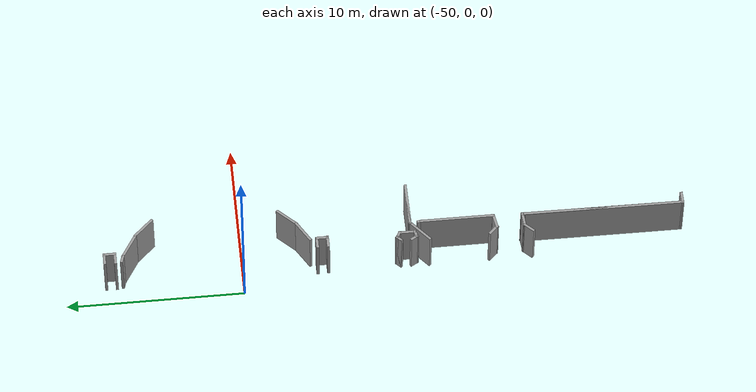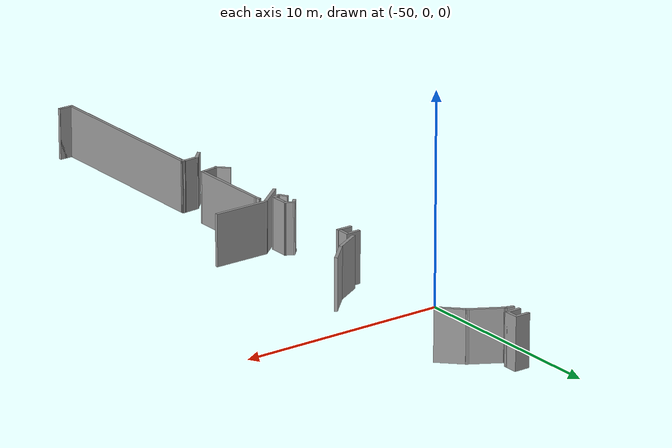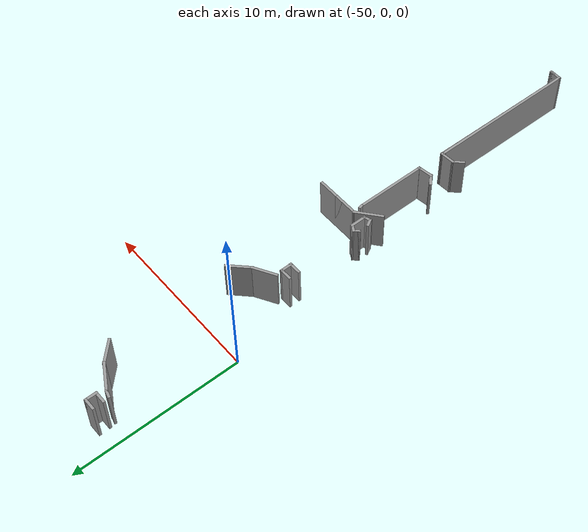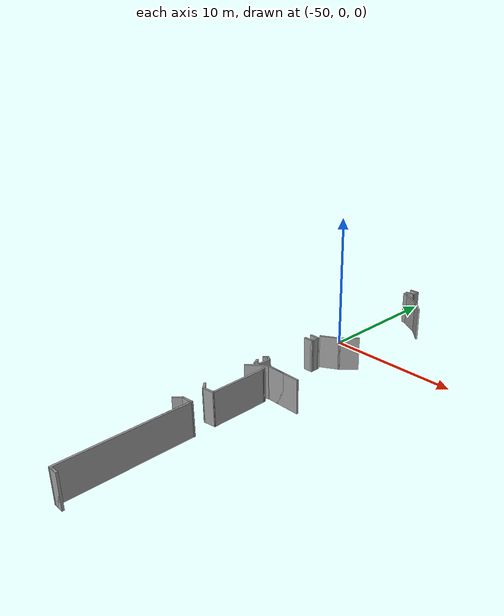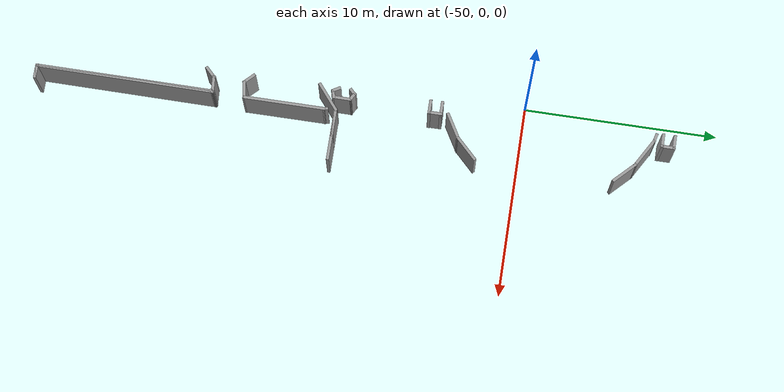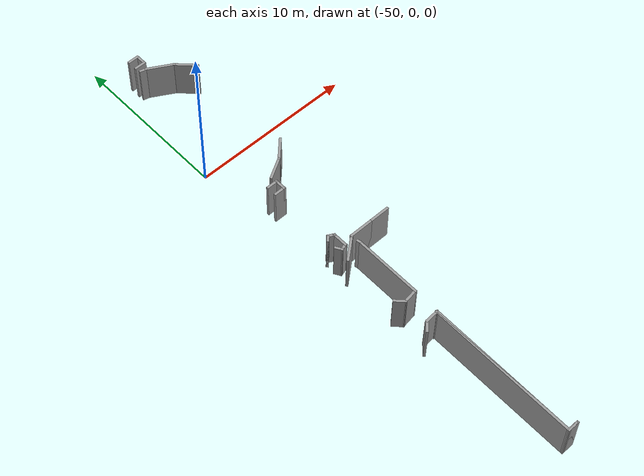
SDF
<sdf version="1.7">
 <model name="TD">
  <pose>-6.31602 -6.69767 0 0 -0 0</pose>
  <link name="Wall_0">
   <collision name="Wall_0_Collision">
    <geometry><box><size>4.25 0.15 2.5</size></box></geometry>
    <pose>0 0 1.25 0 -0 0</pose>
   </collision>
   <visual name="Wall_0_Visual">
    <pose>0 0 1.25 0 -0 0</pose>
    <geometry><box><size>4.25 0.15 2.5</size></box></geometry>
    <material>
     <script><uri>file://media/materials/scripts/gazebo.material</uri><name>Gazebo/Grey</name></script>
     <ambient>1 1 1 1</ambient>
    </material>
    <meta><layer>0</layer></meta>
   </visual>
   <pose>-41.4756 -5.51211 0 0 -0 1.5708</pose>
  </link>
  <link name="Wall_1">
   <collision name="Wall_1_Collision">
    <geometry><box><size>0.279365 0.15 2.5</size></box></geometry>
    <pose>0 0 1.25 0 -0 0</pose>
   </collision>
   <visual name="Wall_1_Visual">
    <pose>0 0 1.25 0 -0 0</pose>
    <geometry><box><size>0.279365 0.15 2.5</size></box></geometry>
    <material>
     <script><uri>file://media/materials/scripts/gazebo.material</uri><name>Gazebo/Grey</name></script>
     <ambient>1 1 1 1</ambient>
    </material>
    <meta><layer>0</layer></meta>
   </visual>
   <pose>-41.4889 -3.37221 0 0 -0 1.7779</pose>
  </link>
  <link name="Wall_10">
   <collision name="Wall_10_Collision">
    <geometry><box><size>9.25 0.15 2.5</size></box></geometry>
    <pose>0 0 1.25 0 -0 0</pose>
   </collision>
   <visual name="Wall_10_Visual">
    <pose>0 0 1.25 0 -0 0</pose>
    <geometry><box><size>9.25 0.15 2.5</size></box></geometry>
    <material>
     <script><uri>file://media/materials/scripts/gazebo.material</uri><name>Gazebo/Grey</name></script>
     <ambient>1 1 1 1</ambient>
    </material>
    <meta><layer>0</layer></meta>
   </visual>
   <pose>-41.5592 -13.7512 0 0 -0 1.56753</pose>
  </link>
  <link name="Wall_11">
   <collision name="Wall_11_Collision">
    <geometry><box><size>0.15 0.15 2.5</size></box></geometry>
    <pose>0 0 1.25 0 -0 0</pose>
   </collision>
   <visual name="Wall_11_Visual">
    <pose>0 0 1.25 0 -0 0</pose>
    <geometry><box><size>0.15 0.15 2.5</size></box></geometry>
    <material>
     <script><uri>file://media/materials/scripts/gazebo.material</uri><name>Gazebo/Grey</name></script>
     <ambient>1 1 1 1</ambient>
    </material>
    <meta><layer>0</layer></meta>
   </visual>
   <pose>-41.5443 -9.2012 0 0 -0 0</pose>
  </link>
  <link name="Wall_12">
   <collision name="Wall_12_Collision">
    <geometry><box><size>9.25035 0.15 2.5</size></box></geometry>
    <pose>0 0 1.25 0 -0 0</pose>
   </collision>
   <visual name="Wall_12_Visual">
    <pose>0 0 1.25 0 -0 0</pose>
    <geometry><box><size>9.25035 0.15 2.5</size></box></geometry>
    <material>
     <script><uri>file://media/materials/scripts/gazebo.material</uri><name>Gazebo/Grey</name></script>
     <ambient>1 1 1 1</ambient>
    </material>
    <meta><layer>0</layer></meta>
   </visual>
   <pose>-41.5476 -13.7512 0 0 -0 -1.57661</pose>
  </link>
  <link name="Wall_135">
   <collision name="Wall_135_Collision">
    <geometry><box><size>2.75 0.15 2.5</size></box></geometry>
    <pose>0 0 1.25 0 -0 0</pose>
   </collision>
   <visual name="Wall_135_Visual">
    <pose>0 0 1.25 0 -0 0</pose>
    <geometry><box><size>2.75 0.15 2.5</size></box></geometry>
    <material>
     <script><uri>file://media/materials/scripts/gazebo.material</uri><name>Gazebo/Grey</name></script>
     <ambient>1 1 1 1</ambient>
    </material>
    <meta><layer>0</layer></meta>
   </visual>
   <pose>-40.2232 -2.84981 0 0 -0 3.14159</pose>
  </link>
  <link name="Wall_136">
   <collision name="Wall_136_Collision">
    <geometry><box><size>0.15 0.15 2.5</size></box></geometry>
    <pose>0 0 1.25 0 -0 0</pose>
   </collision>
   <visual name="Wall_136_Visual">
    <pose>0 0 1.25 0 -0 0</pose>
    <geometry><box><size>0.15 0.15 2.5</size></box></geometry>
    <material>
     <script><uri>file://media/materials/scripts/gazebo.material</uri><name>Gazebo/Grey</name></script>
     <ambient>1 1 1 1</ambient>
    </material>
    <meta><layer>0</layer></meta>
   </visual>
   <pose>-41.5232 -2.84981 0 0 -0 0</pose>
  </link>
  <link name="Wall_137">
   <collision name="Wall_137_Collision">
    <geometry><box><size>0.15 0.15 2.5</size></box></geometry>
    <pose>0 0 1.25 0 -0 0</pose>
   </collision>
   <visual name="Wall_137_Visual">
    <pose>0 0 1.25 0 -0 0</pose>
    <geometry><box><size>0.15 0.15 2.5</size></box></geometry>
    <material>
     <script><uri>file://media/materials/scripts/gazebo.material</uri><name>Gazebo/Grey</name></script>
     <ambient>1 1 1 1</ambient>
    </material>
    <meta><layer>0</layer></meta>
   </visual>
   <pose>-41.5232 -2.84981 0 0 -0 0</pose>
  </link>
  <link name="Wall_140">
   <collision name="Wall_140_Collision">
    <geometry><box><size>1.70244 0.15 2.5</size></box></geometry>
    <pose>0 0 1.25 0 -0 0</pose>
   </collision>
   <visual name="Wall_140_Visual">
    <pose>0 0 1.25 0 -0 0</pose>
    <geometry><box><size>1.70244 0.15 2.5</size></box></geometry>
    <material>
     <script><uri>file://media/materials/scripts/gazebo.material</uri><name>Gazebo/Grey</name></script>
     <ambient>1 1 1 1</ambient>
    </material>
    <meta><layer>0</layer></meta>
   </visual>
   <pose>-42.1238 -3.34154 0 0 -0 0.686062</pose>
  </link>
  <link name="Wall_141">
   <collision name="Wall_141_Collision">
    <geometry><box><size>1.5 0.15 2.5</size></box></geometry>
    <pose>0 0 1.25 0 -0 0</pose>
   </collision>
   <visual name="Wall_141_Visual">
    <pose>0 0 1.25 0 -0 0</pose>
    <geometry><box><size>1.5 0.15 2.5</size></box></geometry>
    <material>
     <script><uri>file://media/materials/scripts/gazebo.material</uri><name>Gazebo/Grey</name></script>
     <ambient>1 1 1 1</ambient>
    </material>
    <meta><layer>0</layer></meta>
   </visual>
   <pose>-40.8482 -2.84981 0 0 -0 0</pose>
  </link>
  <link name="Wall_15">
   <collision name="Wall_15_Collision">
    <geometry><box><size>0.75 0.15 2.5</size></box></geometry>
    <pose>0 0 1.25 0 -0 0</pose>
   </collision>
   <visual name="Wall_15_Visual">
    <pose>0 0 1.25 0 -0 0</pose>
    <geometry><box><size>0.75 0.15 2.5</size></box></geometry>
    <material>
     <script><uri>file://media/materials/scripts/gazebo.material</uri><name>Gazebo/Grey</name></script>
     <ambient>1 1 1 1</ambient>
    </material>
    <meta><layer>0</layer></meta>
   </visual>
   <pose>-41.2741 -18.3012 0 0 -0 0</pose>
  </link>
  <link name="Wall_153">
   <collision name="Wall_153_Collision">
    <geometry><box><size>0.5 0.15 2.5</size></box></geometry>
    <pose>0 0 1.25 0 -0 0</pose>
   </collision>
   <visual name="Wall_153_Visual">
    <pose>0 0 1.25 0 -0 0</pose>
    <geometry><box><size>0.5 0.15 2.5</size></box></geometry>
    <material>
     <script><uri>file://media/materials/scripts/gazebo.material</uri><name>Gazebo/Grey</name></script>
     <ambient>1 1 1 1</ambient>
    </material>
    <meta><layer>0</layer></meta>
   </visual>
   <pose>-42.4488 13.3967 0 0 -0 -0.261799</pose>
  </link>
  <link name="Wall_155">
   <collision name="Wall_155_Collision">
    <geometry><box><size>1.75 0.15 2.5</size></box></geometry>
    <pose>0 0 1.25 0 -0 0</pose>
   </collision>
   <visual name="Wall_155_Visual">
    <pose>0 0 1.25 0 -0 0</pose>
    <geometry><box><size>1.75 0.15 2.5</size></box></geometry>
    <material>
     <script><uri>file://media/materials/scripts/gazebo.material</uri><name>Gazebo/Grey</name></script>
     <ambient>1 1 1 1</ambient>
    </material>
    <meta><layer>0</layer></meta>
   </visual>
   <pose>-41.5869 12.9514 0 0 -0 -0.523599</pose>
  </link>
  <link name="Wall_156">
   <collision name="Wall_156_Collision">
    <geometry><box><size>1.5 0.15 2.5</size></box></geometry>
    <pose>0 0 1.25 0 -0 0</pose>
   </collision>
   <visual name="Wall_156_Visual">
    <pose>0 0 1.25 0 -0 0</pose>
    <geometry><box><size>1.5 0.15 2.5</size></box></geometry>
    <material>
     <script><uri>file://media/materials/scripts/gazebo.material</uri><name>Gazebo/Grey</name></script>
     <ambient>1 1 1 1</ambient>
    </material>
    <meta><layer>0</layer></meta>
   </visual>
   <pose>-40.4168 12.0741 0 0 -0 -0.785398</pose>
  </link>
  <link name="Wall_16">
   <collision name="Wall_16_Collision">
    <geometry><box><size>0.75 0.15 2.5</size></box></geometry>
    <pose>0 0 1.25 0 -0 0</pose>
   </collision>
   <visual name="Wall_16_Visual">
    <pose>0 0 1.25 0 -0 0</pose>
    <geometry><box><size>0.75 0.15 2.5</size></box></geometry>
    <material>
     <script><uri>file://media/materials/scripts/gazebo.material</uri><name>Gazebo/Grey</name></script>
     <ambient>1 1 1 1</ambient>
    </material>
    <meta><layer>0</layer></meta>
   </visual>
   <pose>-41.2608 -18.3012 0 0 -0 3.14159</pose>
  </link>
  <link name="Wall_168">
   <collision name="Wall_168_Collision">
    <geometry><box><size>1.5 0.15 2.5</size></box></geometry>
    <pose>0 0 1.25 0 -0 0</pose>
   </collision>
   <visual name="Wall_168_Visual">
    <pose>0 0 1.25 0 -0 0</pose>
    <geometry><box><size>1.5 0.15 2.5</size></box></geometry>
    <material>
     <script><uri>file://media/materials/scripts/gazebo.material</uri><name>Gazebo/Grey</name></script>
     <ambient>1 1 1 1</ambient>
    </material>
    <meta><layer>0</layer></meta>
   </visual>
   <pose>-40.4771 3.99923 0 0 -0 -2.35619</pose>
  </link>
  <link name="Wall_17">
   <collision name="Wall_17_Collision">
    <geometry><box><size>0.15 0.15 2.5</size></box></geometry>
    <pose>0 0 1.25 0 -0 0</pose>
   </collision>
   <visual name="Wall_17_Visual">
    <pose>0 0 1.25 0 -0 0</pose>
    <geometry><box><size>0.15 0.15 2.5</size></box></geometry>
    <material>
     <script><uri>file://media/materials/scripts/gazebo.material</uri><name>Gazebo/Grey</name></script>
     <ambient>1 1 1 1</ambient>
    </material>
    <meta><layer>0</layer></meta>
   </visual>
   <pose>-41.5741 -18.3012 0 0 -0 0</pose>
  </link>
  <link name="Wall_170">
   <collision name="Wall_170_Collision">
    <geometry><box><size>1.5 0.15 2.5</size></box></geometry>
    <pose>0 0 1.25 0 -0 0</pose>
   </collision>
   <visual name="Wall_170_Visual">
    <pose>0 0 1.25 0 -0 0</pose>
    <geometry><box><size>1.5 0.15 2.5</size></box></geometry>
    <material>
     <script><uri>file://media/materials/scripts/gazebo.material</uri><name>Gazebo/Grey</name></script>
     <ambient>1 1 1 1</ambient>
    </material>
    <meta><layer>0</layer></meta>
   </visual>
   <pose>-41.539 3.18443 0 0 -0 -2.61799</pose>
  </link>
  <link name="Wall_222">
   <collision name="Wall_222_Collision">
    <geometry><box><size>0.5 0.15 2.5</size></box></geometry>
    <pose>0 0 1.25 0 -0 0</pose>
   </collision>
   <visual name="Wall_222_Visual">
    <pose>0 0 1.25 0 -0 0</pose>
    <geometry><box><size>0.5 0.15 2.5</size></box></geometry>
    <material>
     <script><uri>file://media/materials/scripts/gazebo.material</uri><name>Gazebo/Grey</name></script>
     <ambient>1 1 1 1</ambient>
    </material>
    <meta><layer>0</layer></meta>
   </visual>
   <pose>-42.5838 -2.98536 0 0 -0 -1.0472</pose>
  </link>
  <link name="Wall_224">
   <collision name="Wall_224_Collision">
    <geometry><box><size>0.5 0.15 2.5</size></box></geometry>
    <pose>0 0 1.25 0 -0 0</pose>
   </collision>
   <visual name="Wall_224_Visual">
    <pose>0 0 1.25 0 -0 0</pose>
    <geometry><box><size>0.5 0.15 2.5</size></box></geometry>
    <material>
     <script><uri>file://media/materials/scripts/gazebo.material</uri><name>Gazebo/Grey</name></script>
     <ambient>1 1 1 1</ambient>
    </material>
    <meta><layer>0</layer></meta>
   </visual>
   <pose>-42.3273 -3.09162 0 0 -0 0.261799</pose>
  </link>
  <link name="Wall_225">
   <collision name="Wall_225_Collision">
    <geometry><box><size>1 0.15 2.5</size></box></geometry>
    <pose>0 0 1.25 0 -0 0</pose>
   </collision>
   <visual name="Wall_225_Visual">
    <pose>0 0 1.25 0 -0 0</pose>
    <geometry><box><size>1 0.15 2.5</size></box></geometry>
    <material>
     <script><uri>file://media/materials/scripts/gazebo.material</uri><name>Gazebo/Grey</name></script>
     <ambient>1 1 1 1</ambient>
    </material>
    <meta><layer>0</layer></meta>
   </visual>
   <pose>-42.1583 -2.62133 0 0 -0 1.5708</pose>
  </link>
  <link name="Wall_226">
   <collision name="Wall_226_Collision">
    <geometry><box><size>0.5 0.15 2.5</size></box></geometry>
    <pose>0 0 1.25 0 -0 0</pose>
   </collision>
   <visual name="Wall_226_Visual">
    <pose>0 0 1.25 0 -0 0</pose>
    <geometry><box><size>0.5 0.15 2.5</size></box></geometry>
    <material>
     <script><uri>file://media/materials/scripts/gazebo.material</uri><name>Gazebo/Grey</name></script>
     <ambient>1 1 1 1</ambient>
    </material>
    <meta><layer>0</layer></meta>
   </visual>
   <pose>-42.3098 -2.10883 0 0 -0 2.61799</pose>
  </link>
  <link name="Wall_227">
   <collision name="Wall_227_Collision">
    <geometry><box><size>0.448718 0.15 2.5</size></box></geometry>
    <pose>0 0 1.25 0 -0 0</pose>
   </collision>
   <visual name="Wall_227_Visual">
    <pose>0 0 1.25 0 -0 0</pose>
    <geometry><box><size>0.448718 0.15 2.5</size></box></geometry>
    <material>
     <script><uri>file://media/materials/scripts/gazebo.material</uri><name>Gazebo/Grey</name></script>
     <ambient>1 1 1 1</ambient>
    </material>
    <meta><layer>0</layer></meta>
   </visual>
   <pose>-42.5663 -2.12757 0 0 -0 -2.35025</pose>
  </link>
  <link name="Wall_228">
   <collision name="Wall_228_Collision">
    <geometry><box><size>0.448718 0.15 2.5</size></box></geometry>
    <pose>0 0 1.25 0 -0 0</pose>
   </collision>
   <visual name="Wall_228_Visual">
    <pose>0 0 1.25 0 -0 0</pose>
    <geometry><box><size>0.448718 0.15 2.5</size></box></geometry>
    <material>
     <script><uri>file://media/materials/scripts/gazebo.material</uri><name>Gazebo/Grey</name></script>
     <ambient>1 1 1 1</ambient>
    </material>
    <meta><layer>0</layer></meta>
   </visual>
   <pose>-42.5663 -2.12757 0 0 -0 0.791346</pose>
  </link>
  <link name="Wall_244">
   <collision name="Wall_244_Collision">
    <geometry><box><size>0.75 0.15 2.5</size></box></geometry>
    <pose>0 0 1.25 0 -0 0</pose>
   </collision>
   <visual name="Wall_244_Visual">
    <pose>0 0 1.25 0 -0 0</pose>
    <geometry><box><size>0.75 0.15 2.5</size></box></geometry>
    <material>
     <script><uri>file://media/materials/scripts/gazebo.material</uri><name>Gazebo/Grey</name></script>
     <ambient>1 1 1 1</ambient>
    </material>
    <meta><layer>0</layer></meta>
   </visual>
   <pose>-42.3651 14.3883 0 0 -0 0</pose>
  </link>
  <link name="Wall_246">
   <collision name="Wall_246_Collision">
    <geometry><box><size>0.75 0.15 2.5</size></box></geometry>
    <pose>0 0 1.25 0 -0 0</pose>
   </collision>
   <visual name="Wall_246_Visual">
    <pose>0 0 1.25 0 -0 0</pose>
    <geometry><box><size>0.75 0.15 2.5</size></box></geometry>
    <material>
     <script><uri>file://media/materials/scripts/gazebo.material</uri><name>Gazebo/Grey</name></script>
     <ambient>1 1 1 1</ambient>
    </material>
    <meta><layer>0</layer></meta>
   </visual>
   <pose>-42.0651 14.0883 0 0 -0 -1.5708</pose>
  </link>
  <link name="Wall_248">
   <collision name="Wall_248_Collision">
    <geometry><box><size>0.75 0.15 2.5</size></box></geometry>
    <pose>0 0 1.25 0 -0 0</pose>
   </collision>
   <visual name="Wall_248_Visual">
    <pose>0 0 1.25 0 -0 0</pose>
    <geometry><box><size>0.75 0.15 2.5</size></box></geometry>
    <material>
     <script><uri>file://media/materials/scripts/gazebo.material</uri><name>Gazebo/Grey</name></script>
     <ambient>1 1 1 1</ambient>
    </material>
    <meta><layer>0</layer></meta>
   </visual>
   <pose>-42.3651 13.7883 0 0 -0 3.14159</pose>
  </link>
  <link name="Wall_284">
   <collision name="Wall_284_Collision">
    <geometry><box><size>0.75 0.15 2.5</size></box></geometry>
    <pose>0 0 1.25 0 -0 0</pose>
   </collision>
   <visual name="Wall_284_Visual">
    <pose>0 0 1.25 0 -0 0</pose>
    <geometry><box><size>0.75 0.15 2.5</size></box></geometry>
    <material>
     <script><uri>file://media/materials/scripts/gazebo.material</uri><name>Gazebo/Grey</name></script>
     <ambient>1 1 1 1</ambient>
    </material>
    <meta><layer>0</layer></meta>
   </visual>
   <pose>-42.3832 2.46715 0 0 -0 0</pose>
  </link>
  <link name="Wall_286">
   <collision name="Wall_286_Collision">
    <geometry><box><size>0.75 0.15 2.5</size></box></geometry>
    <pose>0 0 1.25 0 -0 0</pose>
   </collision>
   <visual name="Wall_286_Visual">
    <pose>0 0 1.25 0 -0 0</pose>
    <geometry><box><size>0.75 0.15 2.5</size></box></geometry>
    <material>
     <script><uri>file://media/materials/scripts/gazebo.material</uri><name>Gazebo/Grey</name></script>
     <ambient>1 1 1 1</ambient>
    </material>
    <meta><layer>0</layer></meta>
   </visual>
   <pose>-42.0832 2.16715 0 0 -0 -1.5708</pose>
  </link>
  <link name="Wall_289">
   <collision name="Wall_289_Collision">
    <geometry><box><size>0.75 0.15 2.5</size></box></geometry>
    <pose>0 0 1.25 0 -0 0</pose>
   </collision>
   <visual name="Wall_289_Visual">
    <pose>0 0 1.25 0 -0 0</pose>
    <geometry><box><size>0.75 0.15 2.5</size></box></geometry>
    <material>
     <script><uri>file://media/materials/scripts/gazebo.material</uri><name>Gazebo/Grey</name></script>
     <ambient>1 1 1 1</ambient>
    </material>
    <meta><layer>0</layer></meta>
   </visual>
   <pose>-42.3832 1.86715 0 0 -0 0</pose>
  </link>
  <link name="Wall_29">
   <collision name="Wall_29_Collision">
    <geometry><box><size>0.15 0.15 2.5</size></box></geometry>
    <pose>0 0 1.25 0 -0 0</pose>
   </collision>
   <visual name="Wall_29_Visual">
    <pose>0 0 1.25 0 -0 0</pose>
    <geometry><box><size>0.15 0.15 2.5</size></box></geometry>
    <material>
     <script><uri>file://media/materials/scripts/gazebo.material</uri><name>Gazebo/Grey</name></script>
     <ambient>1 1 1 1</ambient>
    </material>
    <meta><layer>0</layer></meta>
   </visual>
   <pose>-41.4756 -7.56211 0 0 -0 0</pose>
  </link>
  <link name="Wall_290">
   <collision name="Wall_290_Collision">
    <geometry><box><size>0.16 0.15 2.5</size></box></geometry>
    <pose>0 0 1.25 0 -0 0</pose>
   </collision>
   <visual name="Wall_290_Visual">
    <pose>0 0 1.25 0 -0 0</pose>
    <geometry><box><size>0.16 0.15 2.5</size></box></geometry>
    <material>
     <script><uri>file://media/materials/scripts/gazebo.material</uri><name>Gazebo/Grey</name></script>
     <ambient>1 1 1 1</ambient>
    </material>
    <meta><layer>0</layer></meta>
   </visual>
   <pose>-42.0782 1.86715 0 0 -0 0</pose>
  </link>
  <link name="Wall_291">
   <collision name="Wall_291_Collision">
    <geometry><box><size>0.16 0.15 2.5</size></box></geometry>
    <pose>0 0 1.25 0 -0 0</pose>
   </collision>
   <visual name="Wall_291_Visual">
    <pose>0 0 1.25 0 -0 0</pose>
    <geometry><box><size>0.16 0.15 2.5</size></box></geometry>
    <material>
     <script><uri>file://media/materials/scripts/gazebo.material</uri><name>Gazebo/Grey</name></script>
     <ambient>1 1 1 1</ambient>
    </material>
    <meta><layer>0</layer></meta>
   </visual>
   <pose>-42.0682 1.86715 0 0 -0 0</pose>
  </link>
  <link name="Wall_32">
   <collision name="Wall_32_Collision">
    <geometry><box><size>0.75 0.15 2.5</size></box></geometry>
    <pose>0 0 1.25 0 -0 0</pose>
   </collision>
   <visual name="Wall_32_Visual">
    <pose>0 0 1.25 0 -0 0</pose>
    <geometry><box><size>0.75 0.15 2.5</size></box></geometry>
    <material>
     <script><uri>file://media/materials/scripts/gazebo.material</uri><name>Gazebo/Grey</name></script>
     <ambient>1 1 1 1</ambient>
    </material>
    <meta><layer>0</layer></meta>
   </visual>
   <pose>-42.5128 -9.46549 0 0 -0 0.785398</pose>
  </link>
  <link name="Wall_33">
   <collision name="Wall_33_Collision">
    <geometry><box><size>0.931242 0.15 2.5</size></box></geometry>
    <pose>0 0 1.25 0 -0 0</pose>
   </collision>
   <visual name="Wall_33_Visual">
    <pose>0 0 1.25 0 -0 0</pose>
    <geometry><box><size>0.931242 0.15 2.5</size></box></geometry>
    <material>
     <script><uri>file://media/materials/scripts/gazebo.material</uri><name>Gazebo/Grey</name></script>
     <ambient>1 1 1 1</ambient>
    </material>
    <meta><layer>0</layer></meta>
   </visual>
   <pose>-41.9109 -9.22728 0 0 -0 0.066812</pose>
  </link>
  <link name="Wall_34">
   <collision name="Wall_34_Collision">
    <geometry><box><size>0.25 0.15 2.5</size></box></geometry>
    <pose>0 0 1.25 0 -0 0</pose>
   </collision>
   <visual name="Wall_34_Visual">
    <pose>0 0 1.25 0 -0 0</pose>
    <geometry><box><size>0.25 0.15 2.5</size></box></geometry>
    <material>
     <script><uri>file://media/materials/scripts/gazebo.material</uri><name>Gazebo/Grey</name></script>
     <ambient>1 1 1 1</ambient>
    </material>
    <meta><layer>0</layer></meta>
   </visual>
   <pose>-41.5462 -9.24451 0 0 -0 -2.0944</pose>
  </link>
  <link name="Wall_36">
   <collision name="Wall_36_Collision">
    <geometry><box><size>0.75 0.15 2.5</size></box></geometry>
    <pose>0 0 1.25 0 -0 0</pose>
   </collision>
   <visual name="Wall_36_Visual">
    <pose>0 0 1.25 0 -0 0</pose>
    <geometry><box><size>0.75 0.15 2.5</size></box></geometry>
    <material>
     <script><uri>file://media/materials/scripts/gazebo.material</uri><name>Gazebo/Grey</name></script>
     <ambient>1 1 1 1</ambient>
    </material>
    <meta><layer>0</layer></meta>
   </visual>
   <pose>-42.4833 -7.4654 0 0 -0 -0.785398</pose>
  </link>
  <link name="Wall_37">
   <collision name="Wall_37_Collision">
    <geometry><box><size>0.953926 0.15 2.5</size></box></geometry>
    <pose>0 0 1.25 0 -0 0</pose>
   </collision>
   <visual name="Wall_37_Visual">
    <pose>0 0 1.25 0 -0 0</pose>
    <geometry><box><size>0.953926 0.15 2.5</size></box></geometry>
    <material>
     <script><uri>file://media/materials/scripts/gazebo.material</uri><name>Gazebo/Grey</name></script>
     <ambient>1 1 1 1</ambient>
    </material>
    <meta><layer>0</layer></meta>
   </visual>
   <pose>-41.8734 -7.61982 0 0 -0 0.144067</pose>
  </link>
  <link name="Wall_38">
   <collision name="Wall_38_Collision">
    <geometry><box><size>0.15 0.15 2.5</size></box></geometry>
    <pose>0 0 1.25 0 -0 0</pose>
   </collision>
   <visual name="Wall_38_Visual">
    <pose>0 0 1.25 0 -0 0</pose>
    <geometry><box><size>0.15 0.15 2.5</size></box></geometry>
    <material>
     <script><uri>file://media/materials/scripts/gazebo.material</uri><name>Gazebo/Grey</name></script>
     <ambient>1 1 1 1</ambient>
    </material>
    <meta><layer>0</layer></meta>
   </visual>
   <pose>-41.4756 -7.56211 0 0 -0 0</pose>
  </link>
  <static>1</static>
 </model>
</sdf>
